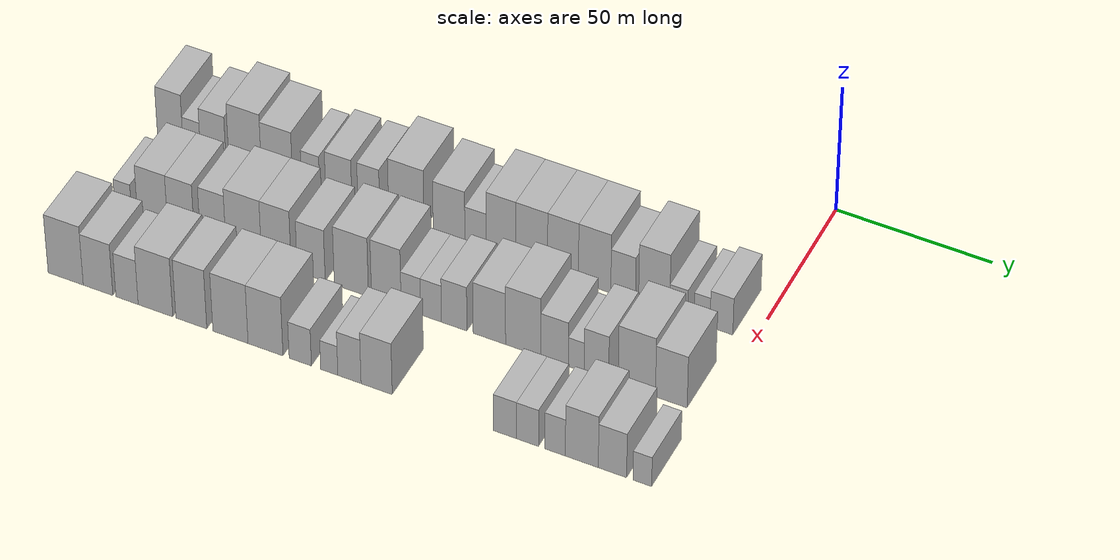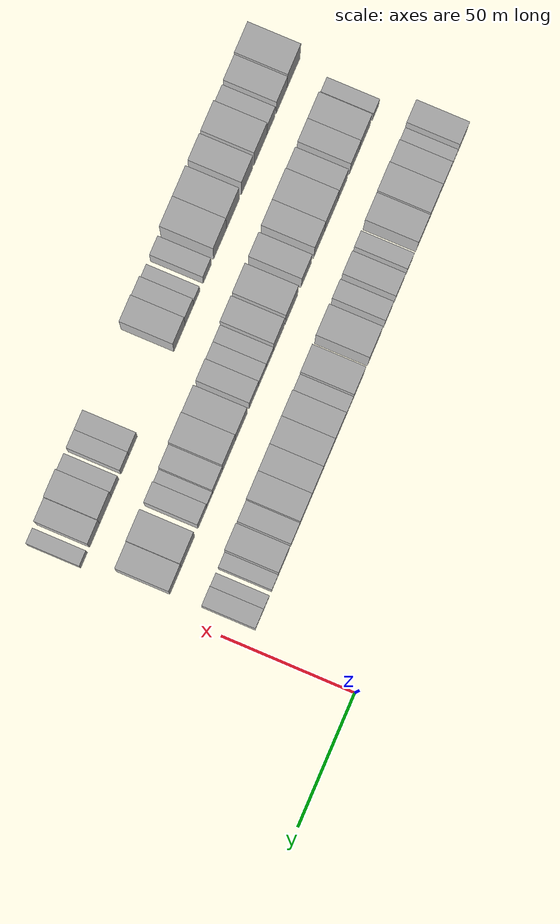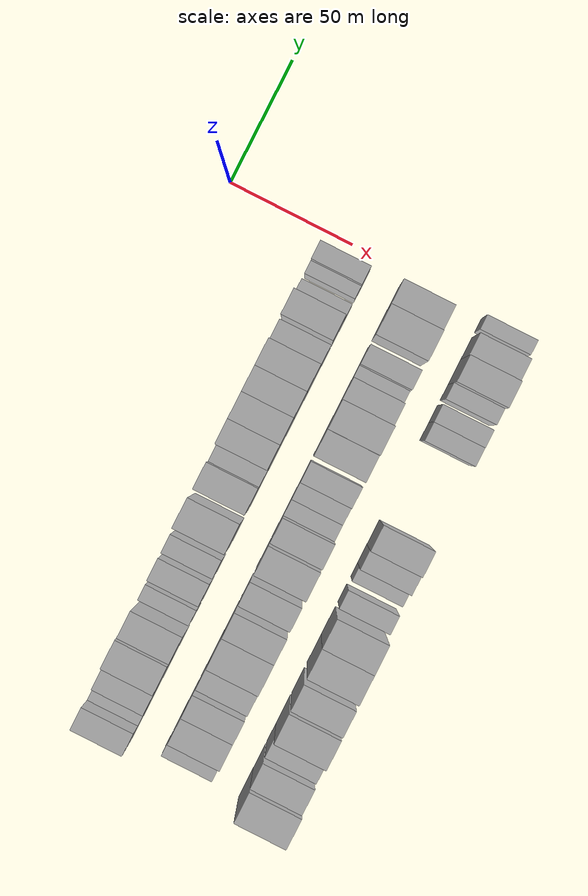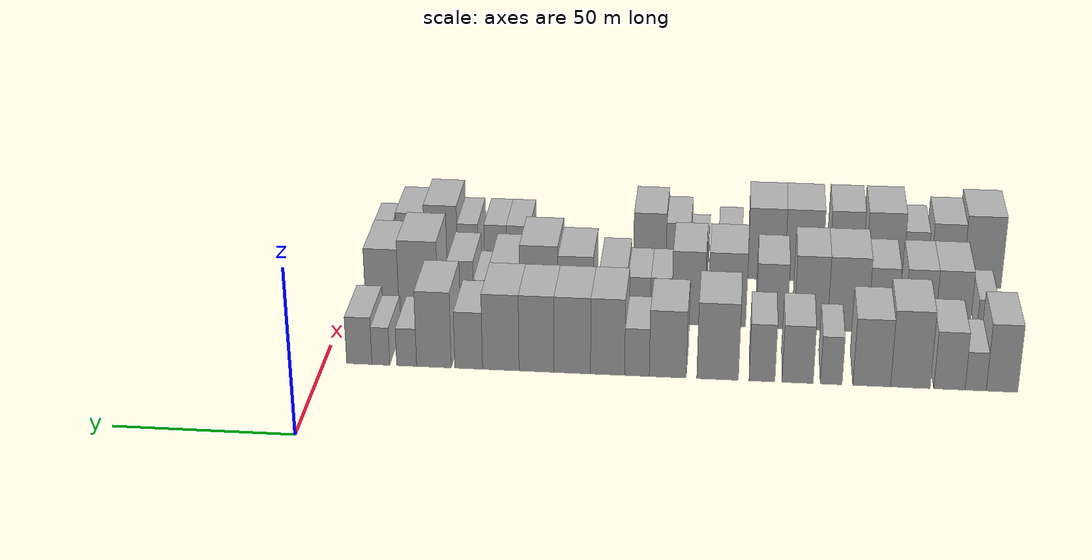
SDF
<sdf version="1.6">
 <world name="default">
  <model name="building_20">
   <static>1</static>
   <pose>50.0000 -191.3891 0 0.000000 0.000000 0.000000</pose>
   <link name="link">
    <pose>0 0 10.50 0 0 0</pose>
    <collision name="collision"><geometry><box><size>20.0000 8.6725 21.0000</size></box></geometry></collision>
    <visual name="visual">
     <cast_shadows>0</cast_shadows>
     <geometry><box><size>20.0000 8.6725 21.0000</size></box></geometry>
     <material>
      <script>
       <uri>model://HANNAS_wall/materials/scripts</uri>
       <uri>model://HANNAS_wall/materials/textures</uri>
       <name>vrc/HANNAS_wall</name>
      </script>
     </material>
    </visual>
   </link>
  </model>
  <model name="building_21">
   <static>1</static>
   <pose>50.0000 -184.1292 0 0.000000 0.000000 0.000000</pose>
   <link name="link">
    <pose>0 0 6.00 0 0 0</pose>
    <collision name="collision"><geometry><box><size>20.0000 5.8472 12.0000</size></box></geometry></collision>
    <visual name="visual">
     <cast_shadows>0</cast_shadows>
     <geometry><box><size>20.0000 5.8472 12.0000</size></box></geometry>
     <material>
      <script>
       <uri>model://HANNAS_wall/materials/scripts</uri>
       <uri>model://HANNAS_wall/materials/textures</uri>
       <name>vrc/HANNAS_wall</name>
      </script>
     </material>
    </visual>
   </link>
  </model>
  <model name="building_22">
   <static>1</static>
   <pose>50.0000 -176.8922 0 0.000000 0.000000 0.000000</pose>
   <link name="link">
    <pose>0 0 9.00 0 0 0</pose>
    <collision name="collision"><geometry><box><size>20.0000 8.6268 18.0000</size></box></geometry></collision>
    <visual name="visual">
     <cast_shadows>0</cast_shadows>
     <geometry><box><size>20.0000 8.6268 18.0000</size></box></geometry>
     <material>
      <script>
       <uri>model://HANNAS_wall/materials/scripts</uri>
       <uri>model://HANNAS_wall/materials/textures</uri>
       <name>vrc/HANNAS_wall</name>
      </script>
     </material>
    </visual>
   </link>
  </model>
  <model name="building_23">
   <static>1</static>
   <pose>50.0000 -166.0902 0 0.000000 0.000000 0.000000</pose>
   <link name="link">
    <pose>0 0 12.00 0 0 0</pose>
    <collision name="collision"><geometry><box><size>20.0000 10.9774 24.0000</size></box></geometry></collision>
    <visual name="visual">
     <cast_shadows>0</cast_shadows>
     <geometry><box><size>20.0000 10.9774 24.0000</size></box></geometry>
     <material>
      <script>
       <uri>model://HANNAS_wall/materials/scripts</uri>
       <uri>model://HANNAS_wall/materials/textures</uri>
       <name>vrc/HANNAS_wall</name>
      </script>
     </material>
    </visual>
   </link>
  </model>
  <model name="building_24">
   <static>1</static>
   <pose>50.0000 -155.3657 0 0.000000 0.000000 0.000000</pose>
   <link name="link">
    <pose>0 0 10.50 0 0 0</pose>
    <collision name="collision"><geometry><box><size>20.0000 10.4715 21.0000</size></box></geometry></collision>
    <visual name="visual">
     <cast_shadows>0</cast_shadows>
     <geometry><box><size>20.0000 10.4715 21.0000</size></box></geometry>
     <material>
      <script>
       <uri>model://HANNAS_wall/materials/scripts</uri>
       <uri>model://HANNAS_wall/materials/textures</uri>
       <name>vrc/HANNAS_wall</name>
      </script>
     </material>
    </visual>
   </link>
  </model>
  <model name="building_25">
   <static>1</static>
   <pose>50.0000 -144.1026 0 0.000000 0.000000 0.000000</pose>
   <link name="link">
    <pose>0 0 7.50 0 0 0</pose>
    <collision name="collision"><geometry><box><size>20.0000 6.0546 15.0000</size></box></geometry></collision>
    <visual name="visual">
     <cast_shadows>0</cast_shadows>
     <geometry><box><size>20.0000 6.0546 15.0000</size></box></geometry>
     <material>
      <script>
       <uri>model://HANNAS_wall/materials/scripts</uri>
       <uri>model://HANNAS_wall/materials/textures</uri>
       <name>vrc/HANNAS_wall</name>
      </script>
     </material>
    </visual>
   </link>
  </model>
  <model name="building_26">
   <static>1</static>
   <pose>50.0000 -134.7185 0 0.000000 0.000000 0.000000</pose>
   <link name="link">
    <pose>0 0 9.00 0 0 0</pose>
    <collision name="collision"><geometry><box><size>20.0000 8.7136 18.0000</size></box></geometry></collision>
    <visual name="visual">
     <cast_shadows>0</cast_shadows>
     <geometry><box><size>20.0000 8.7136 18.0000</size></box></geometry>
     <material>
      <script>
       <uri>model://HANNAS_wall/materials/scripts</uri>
       <uri>model://HANNAS_wall/materials/textures</uri>
       <name>vrc/HANNAS_wall</name>
      </script>
     </material>
    </visual>
   </link>
  </model>
  <model name="building_27">
   <static>1</static>
   <pose>50.0000 -124.7429 0 0.000000 0.000000 0.000000</pose>
   <link name="link">
    <pose>0 0 9.00 0 0 0</pose>
    <collision name="collision"><geometry><box><size>20.0000 7.2376 18.0000</size></box></geometry></collision>
    <visual name="visual">
     <cast_shadows>0</cast_shadows>
     <geometry><box><size>20.0000 7.2376 18.0000</size></box></geometry>
     <material>
      <script>
       <uri>model://HANNAS_wall/materials/scripts</uri>
       <uri>model://HANNAS_wall/materials/textures</uri>
       <name>vrc/HANNAS_wall</name>
      </script>
     </material>
    </visual>
   </link>
  </model>
  <model name="building_28">
   <static>1</static>
   <pose>50.0000 -112.2866 0 0.000000 0.000000 0.000000</pose>
   <link name="link">
    <pose>0 0 12.00 0 0 0</pose>
    <collision name="collision"><geometry><box><size>20.0000 11.6752 24.0000</size></box></geometry></collision>
    <visual name="visual">
     <cast_shadows>0</cast_shadows>
     <geometry><box><size>20.0000 11.6752 24.0000</size></box></geometry>
     <material>
      <script>
       <uri>model://HANNAS_wall/materials/scripts</uri>
       <uri>model://HANNAS_wall/materials/textures</uri>
       <name>vrc/HANNAS_wall</name>
      </script>
     </material>
    </visual>
   </link>
  </model>
  <model name="building_29">
   <static>1</static>
   <pose>50.0000 -98.2323 0 0.000000 0.000000 0.000000</pose>
   <link name="link">
    <pose>0 0 10.50 0 0 0</pose>
    <collision name="collision"><geometry><box><size>20.0000 10.4334 21.0000</size></box></geometry></collision>
    <visual name="visual">
     <cast_shadows>0</cast_shadows>
     <geometry><box><size>20.0000 10.4334 21.0000</size></box></geometry>
     <material>
      <script>
       <uri>model://HANNAS_wall/materials/scripts</uri>
       <uri>model://HANNAS_wall/materials/textures</uri>
       <name>vrc/HANNAS_wall</name>
      </script>
     </material>
    </visual>
   </link>
  </model>
  <model name="building_30">
   <static>1</static>
   <pose>50.0000 -89.5312 0 0.000000 0.000000 0.000000</pose>
   <link name="link">
    <pose>0 0 7.50 0 0 0</pose>
    <collision name="collision"><geometry><box><size>20.0000 6.9687 15.0000</size></box></geometry></collision>
    <visual name="visual">
     <cast_shadows>0</cast_shadows>
     <geometry><box><size>20.0000 6.9687 15.0000</size></box></geometry>
     <material>
      <script>
       <uri>model://HANNAS_wall/materials/scripts</uri>
       <uri>model://HANNAS_wall/materials/textures</uri>
       <name>vrc/HANNAS_wall</name>
      </script>
     </material>
    </visual>
   </link>
  </model>
  <model name="building_31">
   <static>1</static>
   <pose>50.0000 -81.2148 0 0.000000 0.000000 0.000000</pose>
   <link name="link">
    <pose>0 0 12.00 0 0 0</pose>
    <collision name="collision"><geometry><box><size>20.0000 9.6640 24.0000</size></box></geometry></collision>
    <visual name="visual">
     <cast_shadows>0</cast_shadows>
     <geometry><box><size>20.0000 9.6640 24.0000</size></box></geometry>
     <material>
      <script>
       <uri>model://HANNAS_wall/materials/scripts</uri>
       <uri>model://HANNAS_wall/materials/textures</uri>
       <name>vrc/HANNAS_wall</name>
      </script>
     </material>
    </visual>
   </link>
  </model>
  <model name="building_32">
   <static>1</static>
   <pose>50.0000 -71.2039 0 0.000000 0.000000 0.000000</pose>
   <link name="link">
    <pose>0 0 12.00 0 0 0</pose>
    <collision name="collision"><geometry><box><size>20.0000 10.3579 24.0000</size></box></geometry></collision>
    <visual name="visual">
     <cast_shadows>0</cast_shadows>
     <geometry><box><size>20.0000 10.3579 24.0000</size></box></geometry>
     <material>
      <script>
       <uri>model://HANNAS_wall/materials/scripts</uri>
       <uri>model://HANNAS_wall/materials/textures</uri>
       <name>vrc/HANNAS_wall</name>
      </script>
     </material>
    </visual>
   </link>
  </model>
  <model name="building_33">
   <static>1</static>
   <pose>50.0000 -61.0294 0 0.000000 0.000000 0.000000</pose>
   <link name="link">
    <pose>0 0 12.00 0 0 0</pose>
    <collision name="collision"><geometry><box><size>20.0000 9.9911 24.0000</size></box></geometry></collision>
    <visual name="visual">
     <cast_shadows>0</cast_shadows>
     <geometry><box><size>20.0000 9.9911 24.0000</size></box></geometry>
     <material>
      <script>
       <uri>model://HANNAS_wall/materials/scripts</uri>
       <uri>model://HANNAS_wall/materials/textures</uri>
       <name>vrc/HANNAS_wall</name>
      </script>
     </material>
    </visual>
   </link>
  </model>
  <model name="building_34">
   <static>1</static>
   <pose>50.0000 -50.8119 0 0.000000 0.000000 0.000000</pose>
   <link name="link">
    <pose>0 0 12.00 0 0 0</pose>
    <collision name="collision"><geometry><box><size>20.0000 10.4438 24.0000</size></box></geometry></collision>
    <visual name="visual">
     <cast_shadows>0</cast_shadows>
     <geometry><box><size>20.0000 10.4438 24.0000</size></box></geometry>
     <material>
      <script>
       <uri>model://HANNAS_wall/materials/scripts</uri>
       <uri>model://HANNAS_wall/materials/textures</uri>
       <name>vrc/HANNAS_wall</name>
      </script>
     </material>
    </visual>
   </link>
  </model>
  <model name="building_35">
   <static>1</static>
   <pose>50.0000 -41.6259 0 0.000000 0.000000 0.000000</pose>
   <link name="link">
    <pose>0 0 9.00 0 0 0</pose>
    <collision name="collision"><geometry><box><size>20.0000 7.9282 18.0000</size></box></geometry></collision>
    <visual name="visual">
     <cast_shadows>0</cast_shadows>
     <geometry><box><size>20.0000 7.9282 18.0000</size></box></geometry>
     <material>
      <script>
       <uri>model://HANNAS_wall/materials/scripts</uri>
       <uri>model://HANNAS_wall/materials/textures</uri>
       <name>vrc/HANNAS_wall</name>
      </script>
     </material>
    </visual>
   </link>
  </model>
  <model name="building_36">
   <static>1</static>
   <pose>50.0000 -31.6741 0 0.000000 0.000000 0.000000</pose>
   <link name="link">
    <pose>0 0 12.00 0 0 0</pose>
    <collision name="collision"><geometry><box><size>20.0000 9.9756 24.0000</size></box></geometry></collision>
    <visual name="visual">
     <cast_shadows>0</cast_shadows>
     <geometry><box><size>20.0000 9.9756 24.0000</size></box></geometry>
     <material>
      <script>
       <uri>model://HANNAS_wall/materials/scripts</uri>
       <uri>model://HANNAS_wall/materials/textures</uri>
       <name>vrc/HANNAS_wall</name>
      </script>
     </material>
    </visual>
   </link>
  </model>
  <model name="building_37">
   <static>1</static>
   <pose>50.0000 -23.8149 0 0.000000 0.000000 0.000000</pose>
   <link name="link">
    <pose>0 0 6.00 0 0 0</pose>
    <collision name="collision"><geometry><box><size>20.0000 5.7427 12.0000</size></box></geometry></collision>
    <visual name="visual">
     <cast_shadows>0</cast_shadows>
     <geometry><box><size>20.0000 5.7427 12.0000</size></box></geometry>
     <material>
      <script>
       <uri>model://HANNAS_wall/materials/scripts</uri>
       <uri>model://HANNAS_wall/materials/textures</uri>
       <name>vrc/HANNAS_wall</name>
      </script>
     </material>
    </visual>
   </link>
  </model>
  <model name="building_38">
   <static>1</static>
   <pose>50.0000 -16.3730 0 0.000000 0.000000 0.000000</pose>
   <link name="link">
    <pose>0 0 6.00 0 0 0</pose>
    <collision name="collision"><geometry><box><size>20.0000 5.1412 12.0000</size></box></geometry></collision>
    <visual name="visual">
     <cast_shadows>0</cast_shadows>
     <geometry><box><size>20.0000 5.1412 12.0000</size></box></geometry>
     <material>
      <script>
       <uri>model://HANNAS_wall/materials/scripts</uri>
       <uri>model://HANNAS_wall/materials/textures</uri>
       <name>vrc/HANNAS_wall</name>
      </script>
     </material>
    </visual>
   </link>
  </model>
  <model name="building_39">
   <static>1</static>
   <pose>50.0000 -10.1599 0 0.000000 0.000000 0.000000</pose>
   <link name="link">
    <pose>0 0 7.50 0 0 0</pose>
    <collision name="collision"><geometry><box><size>20.0000 7.2848 15.0000</size></box></geometry></collision>
    <visual name="visual">
     <cast_shadows>0</cast_shadows>
     <geometry><box><size>20.0000 7.2848 15.0000</size></box></geometry>
     <material>
      <script>
       <uri>model://HANNAS_wall/materials/scripts</uri>
       <uri>model://HANNAS_wall/materials/textures</uri>
       <name>vrc/HANNAS_wall</name>
      </script>
     </material>
    </visual>
   </link>
  </model>
  <model name="building_98">
   <static>1</static>
   <pose>82.0000 -189.9820 0 0.000000 0.000000 0.000000</pose>
   <link name="link">
    <pose>0 0 6.00 0 0 0</pose>
    <collision name="collision"><geometry><box><size>20.0000 5.6044 12.0000</size></box></geometry></collision>
    <visual name="visual">
     <cast_shadows>0</cast_shadows>
     <geometry><box><size>20.0000 5.6044 12.0000</size></box></geometry>
     <material>
      <script>
       <uri>model://HANNAS_wall/materials/scripts</uri>
       <uri>model://HANNAS_wall/materials/textures</uri>
       <name>vrc/HANNAS_wall</name>
      </script>
     </material>
    </visual>
   </link>
  </model>
  <model name="building_99">
   <static>1</static>
   <pose>82.0000 -180.1381 0 0.000000 0.000000 0.000000</pose>
   <link name="link">
    <pose>0 0 10.50 0 0 0</pose>
    <collision name="collision"><geometry><box><size>20.0000 10.0836 21.0000</size></box></geometry></collision>
    <visual name="visual">
     <cast_shadows>0</cast_shadows>
     <geometry><box><size>20.0000 10.0836 21.0000</size></box></geometry>
     <material>
      <script>
       <uri>model://HANNAS_wall/materials/scripts</uri>
       <uri>model://HANNAS_wall/materials/textures</uri>
       <name>vrc/HANNAS_wall</name>
      </script>
     </material>
    </visual>
   </link>
  </model>
  <model name="building_100">
   <static>1</static>
   <pose>82.0000 -170.6336 0 0.000000 0.000000 0.000000</pose>
   <link name="link">
    <pose>0 0 10.50 0 0 0</pose>
    <collision name="collision"><geometry><box><size>20.0000 8.9254 21.0000</size></box></geometry></collision>
    <visual name="visual">
     <cast_shadows>0</cast_shadows>
     <geometry><box><size>20.0000 8.9254 21.0000</size></box></geometry>
     <material>
      <script>
       <uri>model://HANNAS_wall/materials/scripts</uri>
       <uri>model://HANNAS_wall/materials/textures</uri>
       <name>vrc/HANNAS_wall</name>
      </script>
     </material>
    </visual>
   </link>
  </model>
  <model name="building_101">
   <static>1</static>
   <pose>82.0000 -159.8894 0 0.000000 0.000000 0.000000</pose>
   <link name="link">
    <pose>0 0 10.50 0 0 0</pose>
    <collision name="collision"><geometry><box><size>20.0000 8.5630 21.0000</size></box></geometry></collision>
    <visual name="visual">
     <cast_shadows>0</cast_shadows>
     <geometry><box><size>20.0000 8.5630 21.0000</size></box></geometry>
     <material>
      <script>
       <uri>model://HANNAS_wall/materials/scripts</uri>
       <uri>model://HANNAS_wall/materials/textures</uri>
       <name>vrc/HANNAS_wall</name>
      </script>
     </material>
    </visual>
   </link>
  </model>
  <model name="building_102">
   <static>1</static>
   <pose>82.0000 -149.6990 0 0.000000 0.000000 0.000000</pose>
   <link name="link">
    <pose>0 0 12.00 0 0 0</pose>
    <collision name="collision"><geometry><box><size>20.0000 11.8178 24.0000</size></box></geometry></collision>
    <visual name="visual">
     <cast_shadows>0</cast_shadows>
     <geometry><box><size>20.0000 11.8178 24.0000</size></box></geometry>
     <material>
      <script>
       <uri>model://HANNAS_wall/materials/scripts</uri>
       <uri>model://HANNAS_wall/materials/textures</uri>
       <name>vrc/HANNAS_wall</name>
      </script>
     </material>
    </visual>
   </link>
  </model>
  <model name="building_103">
   <static>1</static>
   <pose>82.0000 -138.8889 0 0.000000 0.000000 0.000000</pose>
   <link name="link">
    <pose>0 0 12.00 0 0 0</pose>
    <collision name="collision"><geometry><box><size>20.0000 9.8024 24.0000</size></box></geometry></collision>
    <visual name="visual">
     <cast_shadows>0</cast_shadows>
     <geometry><box><size>20.0000 9.8024 24.0000</size></box></geometry>
     <material>
      <script>
       <uri>model://HANNAS_wall/materials/scripts</uri>
       <uri>model://HANNAS_wall/materials/textures</uri>
       <name>vrc/HANNAS_wall</name>
      </script>
     </material>
    </visual>
   </link>
  </model>
  <model name="building_104">
   <static>1</static>
   <pose>82.0000 -127.3911 0 0.000000 0.000000 0.000000</pose>
   <link name="link">
    <pose>0 0 10.50 0 0 0</pose>
    <collision name="collision"><geometry><box><size>20.0000 9.1930 21.0000</size></box></geometry></collision>
    <visual name="visual">
     <cast_shadows>0</cast_shadows>
     <geometry><box><size>20.0000 9.1930 21.0000</size></box></geometry>
     <material>
      <script>
       <uri>model://HANNAS_wall/materials/scripts</uri>
       <uri>model://HANNAS_wall/materials/textures</uri>
       <name>vrc/HANNAS_wall</name>
      </script>
     </material>
    </visual>
   </link>
  </model>
  <model name="building_105">
   <static>1</static>
   <pose>82.0000 -114.2026 0 0.000000 0.000000 0.000000</pose>
   <link name="link">
    <pose>0 0 12.00 0 0 0</pose>
    <collision name="collision"><geometry><box><size>20.0000 11.1840 24.0000</size></box></geometry></collision>
    <visual name="visual">
     <cast_shadows>0</cast_shadows>
     <geometry><box><size>20.0000 11.1840 24.0000</size></box></geometry>
     <material>
      <script>
       <uri>model://HANNAS_wall/materials/scripts</uri>
       <uri>model://HANNAS_wall/materials/textures</uri>
       <name>vrc/HANNAS_wall</name>
      </script>
     </material>
    </visual>
   </link>
  </model>
  <model name="building_106">
   <static>1</static>
   <pose>82.0000 -102.7781 0 0.000000 0.000000 0.000000</pose>
   <link name="link">
    <pose>0 0 12.00 0 0 0</pose>
    <collision name="collision"><geometry><box><size>20.0000 9.6650 24.0000</size></box></geometry></collision>
    <visual name="visual">
     <cast_shadows>0</cast_shadows>
     <geometry><box><size>20.0000 9.6650 24.0000</size></box></geometry>
     <material>
      <script>
       <uri>model://HANNAS_wall/materials/scripts</uri>
       <uri>model://HANNAS_wall/materials/textures</uri>
       <name>vrc/HANNAS_wall</name>
      </script>
     </material>
    </visual>
   </link>
  </model>
  <model name="building_107">
   <static>1</static>
   <pose>82.0000 -94.7876 0 0.000000 0.000000 0.000000</pose>
   <link name="link">
    <pose>0 0 7.50 0 0 0</pose>
    <collision name="collision"><geometry><box><size>20.0000 6.3161 15.0000</size></box></geometry></collision>
    <visual name="visual">
     <cast_shadows>0</cast_shadows>
     <geometry><box><size>20.0000 6.3161 15.0000</size></box></geometry>
     <material>
      <script>
       <uri>model://HANNAS_wall/materials/scripts</uri>
       <uri>model://HANNAS_wall/materials/textures</uri>
       <name>vrc/HANNAS_wall</name>
      </script>
     </material>
    </visual>
   </link>
  </model>
  <model name="building_108">
   <static>1</static>
   <pose>82.0000 -88.2394 0 0.000000 0.000000 0.000000</pose>
   <link name="link">
    <pose>0 0 7.50 0 0 0</pose>
    <collision name="collision"><geometry><box><size>20.0000 6.7803 15.0000</size></box></geometry></collision>
    <visual name="visual">
     <cast_shadows>0</cast_shadows>
     <geometry><box><size>20.0000 6.7803 15.0000</size></box></geometry>
     <material>
      <script>
       <uri>model://HANNAS_wall/materials/scripts</uri>
       <uri>model://HANNAS_wall/materials/textures</uri>
       <name>vrc/HANNAS_wall</name>
      </script>
     </material>
    </visual>
   </link>
  </model>
  <model name="building_109">
   <static>1</static>
   <pose>82.0000 -80.7230 0 0.000000 0.000000 0.000000</pose>
   <link name="link">
    <pose>0 0 9.00 0 0 0</pose>
    <collision name="collision"><geometry><box><size>20.0000 8.2525 18.0000</size></box></geometry></collision>
    <visual name="visual">
     <cast_shadows>0</cast_shadows>
     <geometry><box><size>20.0000 8.2525 18.0000</size></box></geometry>
     <material>
      <script>
       <uri>model://HANNAS_wall/materials/scripts</uri>
       <uri>model://HANNAS_wall/materials/textures</uri>
       <name>vrc/HANNAS_wall</name>
      </script>
     </material>
    </visual>
   </link>
  </model>
  <model name="building_110">
   <static>1</static>
   <pose>82.0000 -69.3769 0 0.000000 0.000000 0.000000</pose>
   <link name="link">
    <pose>0 0 10.50 0 0 0</pose>
    <collision name="collision"><geometry><box><size>20.0000 10.4397 21.0000</size></box></geometry></collision>
    <visual name="visual">
     <cast_shadows>0</cast_shadows>
     <geometry><box><size>20.0000 10.4397 21.0000</size></box></geometry>
     <material>
      <script>
       <uri>model://HANNAS_wall/materials/scripts</uri>
       <uri>model://HANNAS_wall/materials/textures</uri>
       <name>vrc/HANNAS_wall</name>
      </script>
     </material>
    </visual>
   </link>
  </model>
  <model name="building_111">
   <static>1</static>
   <pose>82.0000 -58.5042 0 0.000000 0.000000 0.000000</pose>
   <link name="link">
    <pose>0 0 12.00 0 0 0</pose>
    <collision name="collision"><geometry><box><size>20.0000 11.3055 24.0000</size></box></geometry></collision>
    <visual name="visual">
     <cast_shadows>0</cast_shadows>
     <geometry><box><size>20.0000 11.3055 24.0000</size></box></geometry>
     <material>
      <script>
       <uri>model://HANNAS_wall/materials/scripts</uri>
       <uri>model://HANNAS_wall/materials/textures</uri>
       <name>vrc/HANNAS_wall</name>
      </script>
     </material>
    </visual>
   </link>
  </model>
  <model name="building_112">
   <static>1</static>
   <pose>82.0000 -48.4454 0 0.000000 0.000000 0.000000</pose>
   <link name="link">
    <pose>0 0 9.00 0 0 0</pose>
    <collision name="collision"><geometry><box><size>20.0000 8.8121 18.0000</size></box></geometry></collision>
    <visual name="visual">
     <cast_shadows>0</cast_shadows>
     <geometry><box><size>20.0000 8.8121 18.0000</size></box></geometry>
     <material>
      <script>
       <uri>model://HANNAS_wall/materials/scripts</uri>
       <uri>model://HANNAS_wall/materials/textures</uri>
       <name>vrc/HANNAS_wall</name>
      </script>
     </material>
    </visual>
   </link>
  </model>
  <model name="building_113">
   <static>1</static>
   <pose>82.0000 -41.4940 0 0.000000 0.000000 0.000000</pose>
   <link name="link">
    <pose>0 0 6.00 0 0 0</pose>
    <collision name="collision"><geometry><box><size>20.0000 5.0907 12.0000</size></box></geometry></collision>
    <visual name="visual">
     <cast_shadows>0</cast_shadows>
     <geometry><box><size>20.0000 5.0907 12.0000</size></box></geometry>
     <material>
      <script>
       <uri>model://HANNAS_wall/materials/scripts</uri>
       <uri>model://HANNAS_wall/materials/textures</uri>
       <name>vrc/HANNAS_wall</name>
      </script>
     </material>
    </visual>
   </link>
  </model>
  <model name="building_114">
   <static>1</static>
   <pose>82.0000 -35.0647 0 0.000000 0.000000 0.000000</pose>
   <link name="link">
    <pose>0 0 9.00 0 0 0</pose>
    <collision name="collision"><geometry><box><size>20.0000 7.7679 18.0000</size></box></geometry></collision>
    <visual name="visual">
     <cast_shadows>0</cast_shadows>
     <geometry><box><size>20.0000 7.7679 18.0000</size></box></geometry>
     <material>
      <script>
       <uri>model://HANNAS_wall/materials/scripts</uri>
       <uri>model://HANNAS_wall/materials/textures</uri>
       <name>vrc/HANNAS_wall</name>
      </script>
     </material>
    </visual>
   </link>
  </model>
  <model name="building_115">
   <static>1</static>
   <pose>82.0000 -22.2854 0 0.000000 0.000000 0.000000</pose>
   <link name="link">
    <pose>0 0 12.00 0 0 0</pose>
    <collision name="collision"><geometry><box><size>20.0000 11.7908 24.0000</size></box></geometry></collision>
    <visual name="visual">
     <cast_shadows>0</cast_shadows>
     <geometry><box><size>20.0000 11.7908 24.0000</size></box></geometry>
     <material>
      <script>
       <uri>model://HANNAS_wall/materials/scripts</uri>
       <uri>model://HANNAS_wall/materials/textures</uri>
       <name>vrc/HANNAS_wall</name>
      </script>
     </material>
    </visual>
   </link>
  </model>
  <model name="building_116">
   <static>1</static>
   <pose>82.0000 -11.3780 0 0.000000 0.000000 0.000000</pose>
   <link name="link">
    <pose>0 0 10.50 0 0 0</pose>
    <collision name="collision"><geometry><box><size>20.0000 10.0240 21.0000</size></box></geometry></collision>
    <visual name="visual">
     <cast_shadows>0</cast_shadows>
     <geometry><box><size>20.0000 10.0240 21.0000</size></box></geometry>
     <material>
      <script>
       <uri>model://HANNAS_wall/materials/scripts</uri>
       <uri>model://HANNAS_wall/materials/textures</uri>
       <name>vrc/HANNAS_wall</name>
      </script>
     </material>
    </visual>
   </link>
  </model>
  <model name="building_171">
   <static>1</static>
   <pose>114.0000 -191.6706 0 0.000000 0.000000 0.000000</pose>
   <link name="link">
    <pose>0 0 12.00 0 0 0</pose>
    <collision name="collision"><geometry><box><size>20.0000 11.7159 24.0000</size></box></geometry></collision>
    <visual name="visual">
     <cast_shadows>0</cast_shadows>
     <geometry><box><size>20.0000 11.7159 24.0000</size></box></geometry>
     <material>
      <script>
       <uri>model://HANNAS_wall/materials/scripts</uri>
       <uri>model://HANNAS_wall/materials/textures</uri>
       <name>vrc/HANNAS_wall</name>
      </script>
     </material>
    </visual>
   </link>
  </model>
  <model name="building_172">
   <static>1</static>
   <pose>114.0000 -180.8854 0 0.000000 0.000000 0.000000</pose>
   <link name="link">
    <pose>0 0 10.50 0 0 0</pose>
    <collision name="collision"><geometry><box><size>20.0000 9.8545 21.0000</size></box></geometry></collision>
    <visual name="visual">
     <cast_shadows>0</cast_shadows>
     <geometry><box><size>20.0000 9.8545 21.0000</size></box></geometry>
     <material>
      <script>
       <uri>model://HANNAS_wall/materials/scripts</uri>
       <uri>model://HANNAS_wall/materials/textures</uri>
       <name>vrc/HANNAS_wall</name>
      </script>
     </material>
    </visual>
   </link>
  </model>
  <model name="building_173">
   <static>1</static>
   <pose>114.0000 -171.2642 0 0.000000 0.000000 0.000000</pose>
   <link name="link">
    <pose>0 0 9.00 0 0 0</pose>
    <collision name="collision"><geometry><box><size>20.0000 7.3879 18.0000</size></box></geometry></collision>
    <visual name="visual">
     <cast_shadows>0</cast_shadows>
     <geometry><box><size>20.0000 7.3879 18.0000</size></box></geometry>
     <material>
      <script>
       <uri>model://HANNAS_wall/materials/scripts</uri>
       <uri>model://HANNAS_wall/materials/textures</uri>
       <name>vrc/HANNAS_wall</name>
      </script>
     </material>
    </visual>
   </link>
  </model>
  <model name="building_174">
   <static>1</static>
   <pose>114.0000 -161.8448 0 0.000000 0.000000 0.000000</pose>
   <link name="link">
    <pose>0 0 12.00 0 0 0</pose>
    <collision name="collision"><geometry><box><size>20.0000 11.4509 24.0000</size></box></geometry></collision>
    <visual name="visual">
     <cast_shadows>0</cast_shadows>
     <geometry><box><size>20.0000 11.4509 24.0000</size></box></geometry>
     <material>
      <script>
       <uri>model://HANNAS_wall/materials/scripts</uri>
       <uri>model://HANNAS_wall/materials/textures</uri>
       <name>vrc/HANNAS_wall</name>
      </script>
     </material>
    </visual>
   </link>
  </model>
  <model name="building_175">
   <static>1</static>
   <pose>114.0000 -150.0311 0 0.000000 0.000000 0.000000</pose>
   <link name="link">
    <pose>0 0 12.00 0 0 0</pose>
    <collision name="collision"><geometry><box><size>20.0000 10.1765 24.0000</size></box></geometry></collision>
    <visual name="visual">
     <cast_shadows>0</cast_shadows>
     <geometry><box><size>20.0000 10.1765 24.0000</size></box></geometry>
     <material>
      <script>
       <uri>model://HANNAS_wall/materials/scripts</uri>
       <uri>model://HANNAS_wall/materials/textures</uri>
       <name>vrc/HANNAS_wall</name>
      </script>
     </material>
    </visual>
   </link>
  </model>
  <model name="building_176">
   <static>1</static>
   <pose>114.0000 -137.1858 0 0.000000 0.000000 0.000000</pose>
   <link name="link">
    <pose>0 0 12.00 0 0 0</pose>
    <collision name="collision"><geometry><box><size>20.0000 11.5141 24.0000</size></box></geometry></collision>
    <visual name="visual">
     <cast_shadows>0</cast_shadows>
     <geometry><box><size>20.0000 11.5141 24.0000</size></box></geometry>
     <material>
      <script>
       <uri>model://HANNAS_wall/materials/scripts</uri>
       <uri>model://HANNAS_wall/materials/textures</uri>
       <name>vrc/HANNAS_wall</name>
      </script>
     </material>
    </visual>
   </link>
  </model>
  <model name="building_177">
   <static>1</static>
   <pose>114.0000 -125.7358 0 0.000000 0.000000 0.000000</pose>
   <link name="link">
    <pose>0 0 12.00 0 0 0</pose>
    <collision name="collision"><geometry><box><size>20.0000 11.3860 24.0000</size></box></geometry></collision>
    <visual name="visual">
     <cast_shadows>0</cast_shadows>
     <geometry><box><size>20.0000 11.3860 24.0000</size></box></geometry>
     <material>
      <script>
       <uri>model://HANNAS_wall/materials/scripts</uri>
       <uri>model://HANNAS_wall/materials/textures</uri>
       <name>vrc/HANNAS_wall</name>
      </script>
     </material>
    </visual>
   </link>
  </model>
  <model name="building_178">
   <static>1</static>
   <pose>114.0000 -114.4228 0 0.000000 0.000000 0.000000</pose>
   <link name="link">
    <pose>0 0 7.50 0 0 0</pose>
    <collision name="collision"><geometry><box><size>20.0000 7.2400 15.0000</size></box></geometry></collision>
    <visual name="visual">
     <cast_shadows>0</cast_shadows>
     <geometry><box><size>20.0000 7.2400 15.0000</size></box></geometry>
     <material>
      <script>
       <uri>model://HANNAS_wall/materials/scripts</uri>
       <uri>model://HANNAS_wall/materials/textures</uri>
       <name>vrc/HANNAS_wall</name>
      </script>
     </material>
    </visual>
   </link>
  </model>
  <model name="building_179">
   <static>1</static>
   <pose>114.0000 -105.0271 0 0.000000 0.000000 0.000000</pose>
   <link name="link">
    <pose>0 0 6.00 0 0 0</pose>
    <collision name="collision"><geometry><box><size>20.0000 5.5513 12.0000</size></box></geometry></collision>
    <visual name="visual">
     <cast_shadows>0</cast_shadows>
     <geometry><box><size>20.0000 5.5513 12.0000</size></box></geometry>
     <material>
      <script>
       <uri>model://HANNAS_wall/materials/scripts</uri>
       <uri>model://HANNAS_wall/materials/textures</uri>
       <name>vrc/HANNAS_wall</name>
      </script>
     </material>
    </visual>
   </link>
  </model>
  <model name="building_180">
   <static>1</static>
   <pose>114.0000 -98.5087 0 0.000000 0.000000 0.000000</pose>
   <link name="link">
    <pose>0 0 9.00 0 0 0</pose>
    <collision name="collision"><geometry><box><size>20.0000 7.4856 18.0000</size></box></geometry></collision>
    <visual name="visual">
     <cast_shadows>0</cast_shadows>
     <geometry><box><size>20.0000 7.4856 18.0000</size></box></geometry>
     <material>
      <script>
       <uri>model://HANNAS_wall/materials/scripts</uri>
       <uri>model://HANNAS_wall/materials/textures</uri>
       <name>vrc/HANNAS_wall</name>
      </script>
     </material>
    </visual>
   </link>
  </model>
  <model name="building_181">
   <static>1</static>
   <pose>114.0000 -89.7515 0 0.000000 0.000000 0.000000</pose>
   <link name="link">
    <pose>0 0 10.50 0 0 0</pose>
    <collision name="collision"><geometry><box><size>20.0000 10.0289 21.0000</size></box></geometry></collision>
    <visual name="visual">
     <cast_shadows>0</cast_shadows>
     <geometry><box><size>20.0000 10.0289 21.0000</size></box></geometry>
     <material>
      <script>
       <uri>model://HANNAS_wall/materials/scripts</uri>
       <uri>model://HANNAS_wall/materials/textures</uri>
       <name>vrc/HANNAS_wall</name>
      </script>
     </material>
    </visual>
   </link>
  </model>
  <model name="building_182">
   <static>1</static>
   <pose>114.0000 -48.7349 0 0.000000 0.000000 0.000000</pose>
   <link name="link">
    <pose>0 0 7.50 0 0 0</pose>
    <collision name="collision"><geometry><box><size>20.0000 7.3347 15.0000</size></box></geometry></collision>
    <visual name="visual">
     <cast_shadows>0</cast_shadows>
     <geometry><box><size>20.0000 7.3347 15.0000</size></box></geometry>
     <material>
      <script>
       <uri>model://HANNAS_wall/materials/scripts</uri>
       <uri>model://HANNAS_wall/materials/textures</uri>
       <name>vrc/HANNAS_wall</name>
      </script>
     </material>
    </visual>
   </link>
  </model>
  <model name="building_183">
   <static>1</static>
   <pose>114.0000 -41.6020 0 0.000000 0.000000 0.000000</pose>
   <link name="link">
    <pose>0 0 7.50 0 0 0</pose>
    <collision name="collision"><geometry><box><size>20.0000 6.9311 15.0000</size></box></geometry></collision>
    <visual name="visual">
     <cast_shadows>0</cast_shadows>
     <geometry><box><size>20.0000 6.9311 15.0000</size></box></geometry>
     <material>
      <script>
       <uri>model://HANNAS_wall/materials/scripts</uri>
       <uri>model://HANNAS_wall/materials/textures</uri>
       <name>vrc/HANNAS_wall</name>
      </script>
     </material>
    </visual>
   </link>
  </model>
  <model name="building_184">
   <static>1</static>
   <pose>114.0000 -32.9113 0 0.000000 0.000000 0.000000</pose>
   <link name="link">
    <pose>0 0 7.50 0 0 0</pose>
    <collision name="collision"><geometry><box><size>20.0000 6.4503 15.0000</size></box></geometry></collision>
    <visual name="visual">
     <cast_shadows>0</cast_shadows>
     <geometry><box><size>20.0000 6.4503 15.0000</size></box></geometry>
     <material>
      <script>
       <uri>model://HANNAS_wall/materials/scripts</uri>
       <uri>model://HANNAS_wall/materials/textures</uri>
       <name>vrc/HANNAS_wall</name>
      </script>
     </material>
    </visual>
   </link>
  </model>
  <model name="building_185">
   <static>1</static>
   <pose>114.0000 -24.5173 0 0.000000 0.000000 0.000000</pose>
   <link name="link">
    <pose>0 0 10.50 0 0 0</pose>
    <collision name="collision"><geometry><box><size>20.0000 10.3377 21.0000</size></box></geometry></collision>
    <visual name="visual">
     <cast_shadows>0</cast_shadows>
     <geometry><box><size>20.0000 10.3377 21.0000</size></box></geometry>
     <material>
      <script>
       <uri>model://HANNAS_wall/materials/scripts</uri>
       <uri>model://HANNAS_wall/materials/textures</uri>
       <name>vrc/HANNAS_wall</name>
      </script>
     </material>
    </visual>
   </link>
  </model>
  <model name="building_186">
   <static>1</static>
   <pose>114.0000 -14.9245 0 0.000000 0.000000 0.000000</pose>
   <link name="link">
    <pose>0 0 9.00 0 0 0</pose>
    <collision name="collision"><geometry><box><size>20.0000 8.8478 18.0000</size></box></geometry></collision>
    <visual name="visual">
     <cast_shadows>0</cast_shadows>
     <geometry><box><size>20.0000 8.8478 18.0000</size></box></geometry>
     <material>
      <script>
       <uri>model://HANNAS_wall/materials/scripts</uri>
       <uri>model://HANNAS_wall/materials/textures</uri>
       <name>vrc/HANNAS_wall</name>
      </script>
     </material>
    </visual>
   </link>
  </model>
  <model name="building_187">
   <static>1</static>
   <pose>114.0000 -5.5916 0 0.000000 0.000000 0.000000</pose>
   <link name="link">
    <pose>0 0 6.00 0 0 0</pose>
    <collision name="collision"><geometry><box><size>20.0000 5.8180 12.0000</size></box></geometry></collision>
    <visual name="visual">
     <cast_shadows>0</cast_shadows>
     <geometry><box><size>20.0000 5.8180 12.0000</size></box></geometry>
     <material>
      <script>
       <uri>model://HANNAS_wall/materials/scripts</uri>
       <uri>model://HANNAS_wall/materials/textures</uri>
       <name>vrc/HANNAS_wall</name>
      </script>
     </material>
    </visual>
   </link>
  </model>
 </world>
</sdf>
